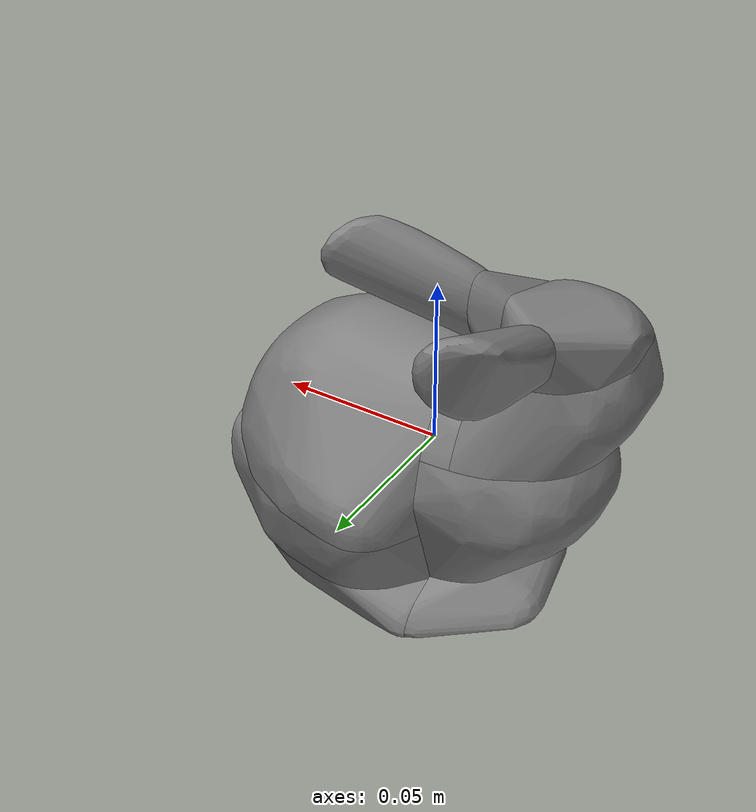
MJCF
<mujoco model="stanford_bunny">
  <compiler meshdir="."/>

  <asset>
    <mesh name="stanford_bunny" file="stanford_bunny.stl"/>
    <mesh name="stanford_bunny_collision_hull_000" file="stanford_bunny_collision_hull_000.stl"/>
    <mesh name="stanford_bunny_collision_hull_001" file="stanford_bunny_collision_hull_001.stl"/>
    <mesh name="stanford_bunny_collision_hull_002" file="stanford_bunny_collision_hull_002.stl"/>
    <mesh name="stanford_bunny_collision_hull_003" file="stanford_bunny_collision_hull_003.stl"/>
    <mesh name="stanford_bunny_collision_hull_004" file="stanford_bunny_collision_hull_004.stl"/>
    <mesh name="stanford_bunny_collision_hull_005" file="stanford_bunny_collision_hull_005.stl"/>
    <mesh name="stanford_bunny_collision_hull_006" file="stanford_bunny_collision_hull_006.stl"/>
    <mesh name="stanford_bunny_collision_hull_007" file="stanford_bunny_collision_hull_007.stl"/>
    <mesh name="stanford_bunny_collision_hull_008" file="stanford_bunny_collision_hull_008.stl"/>
    <mesh name="stanford_bunny_collision_hull_009" file="stanford_bunny_collision_hull_009.stl"/>
    <mesh name="stanford_bunny_collision_hull_010" file="stanford_bunny_collision_hull_010.stl"/>
  </asset>

  <worldbody>
    <body name="object">
      <freejoint name="object_joint"/>
      <geom name="object_visual" type="mesh" mesh="stanford_bunny"
            contype="0" conaffinity="0" group="2" rgba="0.9 0.9 0.8 1" mass="0"/>
      <geom name="stanford_bunny_collision_hull_000_collision" type="mesh" mesh="stanford_bunny_collision_hull_000"
            mass="0.0045" condim="6" friction="1.0 0.002 0.002" priority="1"/>
      <geom name="stanford_bunny_collision_hull_001_collision" type="mesh" mesh="stanford_bunny_collision_hull_001"
            mass="0.0045" condim="6" friction="1.0 0.002 0.002" priority="1"/>
      <geom name="stanford_bunny_collision_hull_002_collision" type="mesh" mesh="stanford_bunny_collision_hull_002"
            mass="0.0045" condim="6" friction="1.0 0.002 0.002" priority="1"/>
      <geom name="stanford_bunny_collision_hull_003_collision" type="mesh" mesh="stanford_bunny_collision_hull_003"
            mass="0.0045" condim="6" friction="1.0 0.002 0.002" priority="1"/>
      <geom name="stanford_bunny_collision_hull_004_collision" type="mesh" mesh="stanford_bunny_collision_hull_004"
            mass="0.0045" condim="6" friction="1.0 0.002 0.002" priority="1"/>
      <geom name="stanford_bunny_collision_hull_005_collision" type="mesh" mesh="stanford_bunny_collision_hull_005"
            mass="0.0045" condim="6" friction="1.0 0.002 0.002" priority="1"/>
      <geom name="stanford_bunny_collision_hull_006_collision" type="mesh" mesh="stanford_bunny_collision_hull_006"
            mass="0.0045" condim="6" friction="1.0 0.002 0.002" priority="1"/>
      <geom name="stanford_bunny_collision_hull_007_collision" type="mesh" mesh="stanford_bunny_collision_hull_007"
            mass="0.0045" condim="6" friction="1.0 0.002 0.002" priority="1"/>
      <geom name="stanford_bunny_collision_hull_008_collision" type="mesh" mesh="stanford_bunny_collision_hull_008"
            mass="0.0045" condim="6" friction="1.0 0.002 0.002" priority="1"/>
      <geom name="stanford_bunny_collision_hull_009_collision" type="mesh" mesh="stanford_bunny_collision_hull_009"
            mass="0.0045" condim="6" friction="1.0 0.002 0.002" priority="1"/>
      <geom name="stanford_bunny_collision_hull_010_collision" type="mesh" mesh="stanford_bunny_collision_hull_010"
            mass="0.0045" condim="6" friction="1.0 0.002 0.002" priority="1"/>
    </body>
  </worldbody>
</mujoco>
